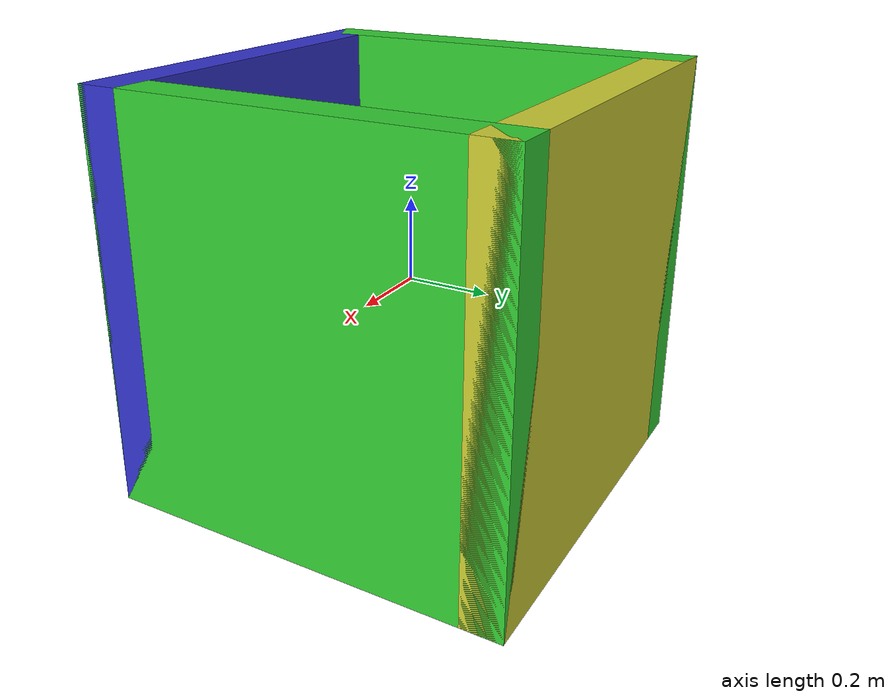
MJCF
<mujoco>
  <worldbody>
    <body name="hollow_box" pos="0 0 0">
      <freejoint/>
      <!-- Left Wall -->
      <geom type="box" size="0.05 0.5 0.5" pos="-0.45 0 0" rgba="0.2 0.8 0.2 1"/>
      <!-- Right Wall -->
      <geom type="box" size="0.05 0.5 0.5" pos="0.45 0 0" rgba="0.2 0.8 0.2 1"/>
      <!-- Front Wall -->
      <geom type="box" size="0.5 0.05 0.5" pos="0 -0.45 0" rgba="0.2 0.2 0.8 1"/>
      <!-- Back Wall -->
      <geom type="box" size="0.5 0.05 0.5" pos="0 0.45 0" rgba="0.8 0.8 0.2 1"/>
    </body>
  </worldbody>
</mujoco>
